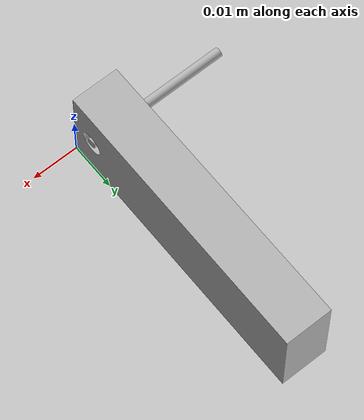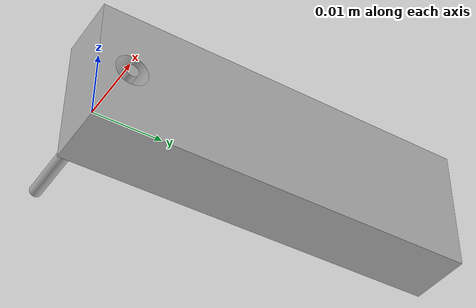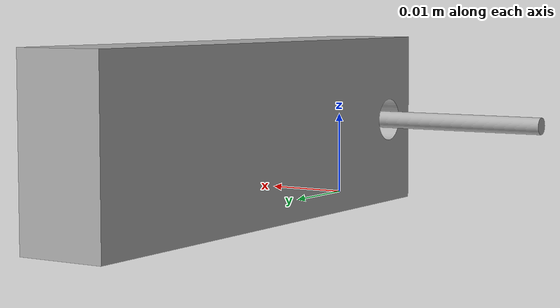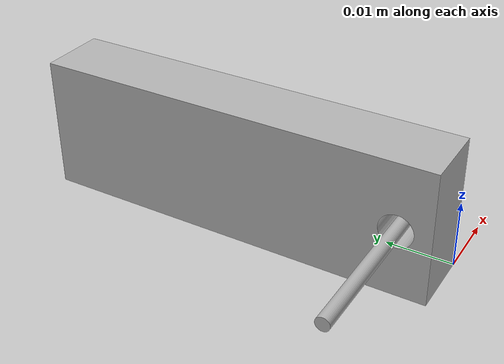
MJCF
<mujoco model="TEST">
  <compiler angle="radian"/>

  <asset>
    <mesh name="base_link" content_type="model/stl" file="base_link.stl" scale="0.001 0.001 0.001"/>
    <mesh name="link_1" content_type="model/stl" file="link_1.stl" scale="0.001 0.001 0.001"/>
  </asset>

  <worldbody>
    <geom type="mesh" rgba="0.7 0.7 0.7 1" mesh="base_link"/>
    <body name="link_1" pos="0 0.005 0.01">
      <inertial pos="-0.005 0.0254159 0" quat="0.707107 0.707107 0 0" mass="0.0926587" diaginertia="3e-05 2.8e-05 4e-06"/>
      <joint name="Revolute 1" pos="0 0 0" axis="1 0 0"/>
      <geom pos="0 -0.005 -0.01" quat="1 0 0 0" type="mesh" rgba="0.7 0.7 0.7 1" mesh="link_1"/>
    </body>
  </worldbody>
  <actuator>
  </actuator>
</mujoco>
